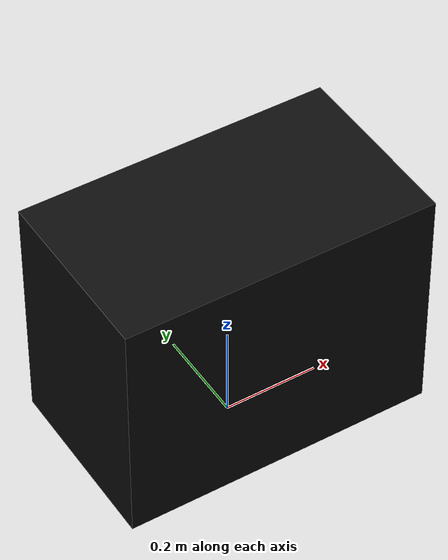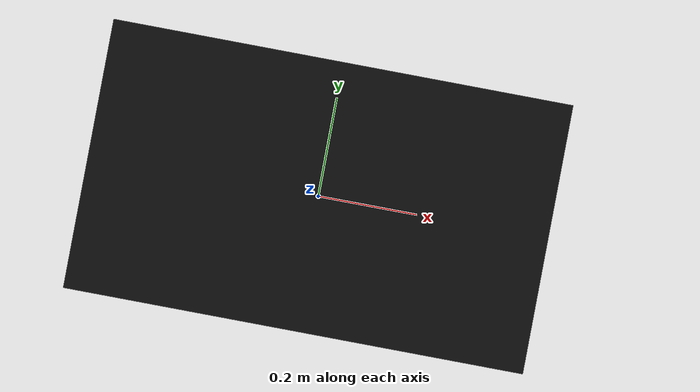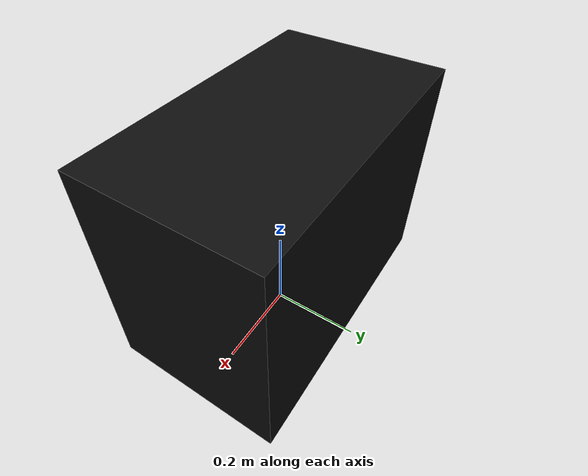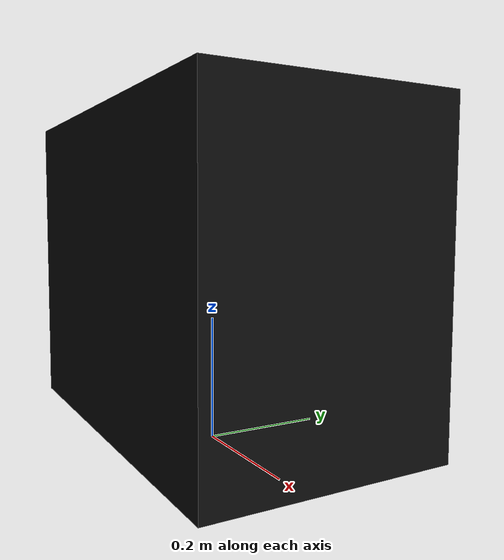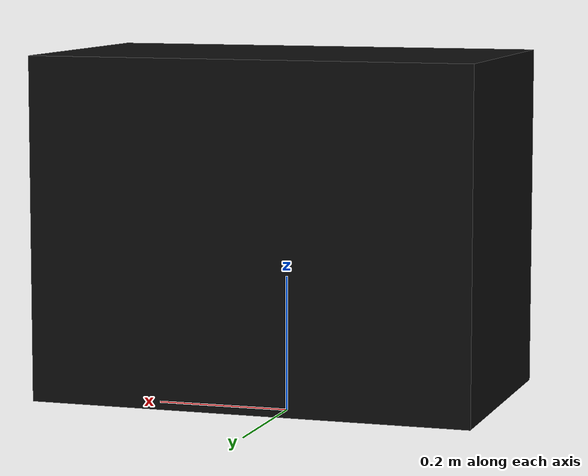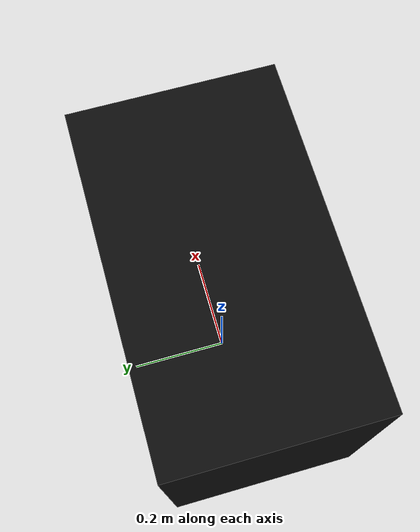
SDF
<?xml version="1.0" ?>
<sdf version="1.6">
  <model name="box">
    <static>true</static>
    <allow_auto_disable>true</allow_auto_disable>
    <link name="link">
      <pose>0 0 0.28 0 0 0</pose>
      <collision name="collision">
        <geometry>
          <box>
            <size>0.65 0.38 0.5</size>
          </box>
        </geometry>
      </collision>
      <visual name="visual">
        <cast_shadows>false</cast_shadows>
        <geometry>
          <box>
            <size>0.65 0.38 0.5</size>
          </box>
        </geometry>
        <material>
          <ambient>0.02 0.02 0.02 1</ambient>
          <diffuse>0.05 0.05 0.05 1</diffuse>
          <specular>0.1 0.1 0.1 1</specular>
        </material>
      </visual>
    </link>
  </model>
</sdf>
